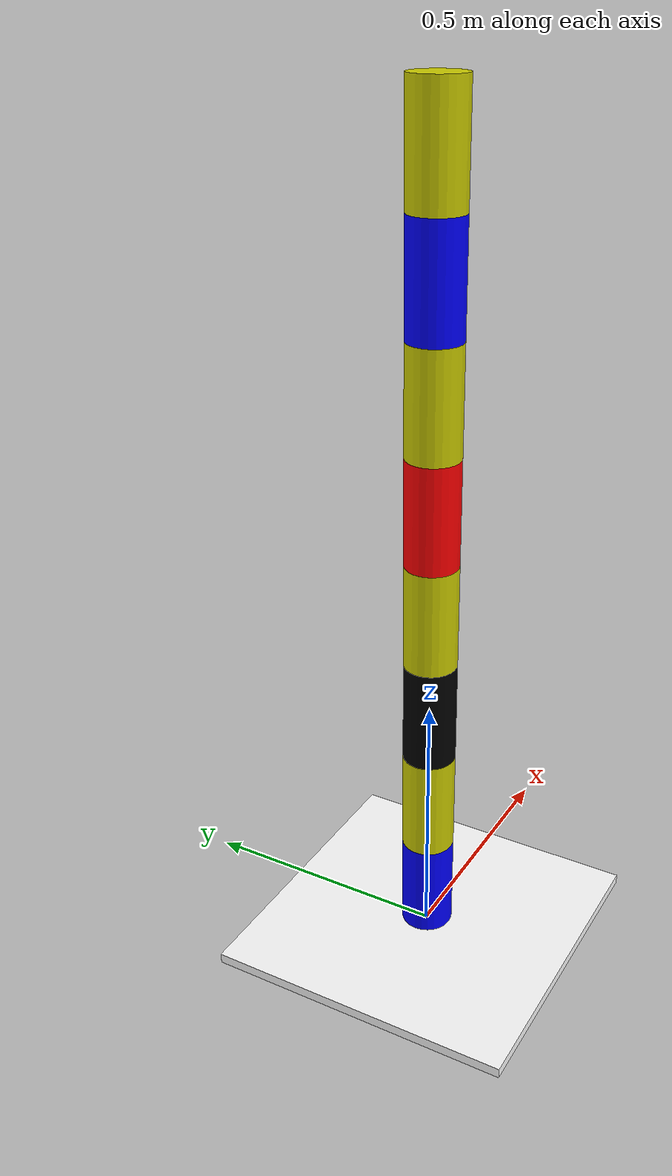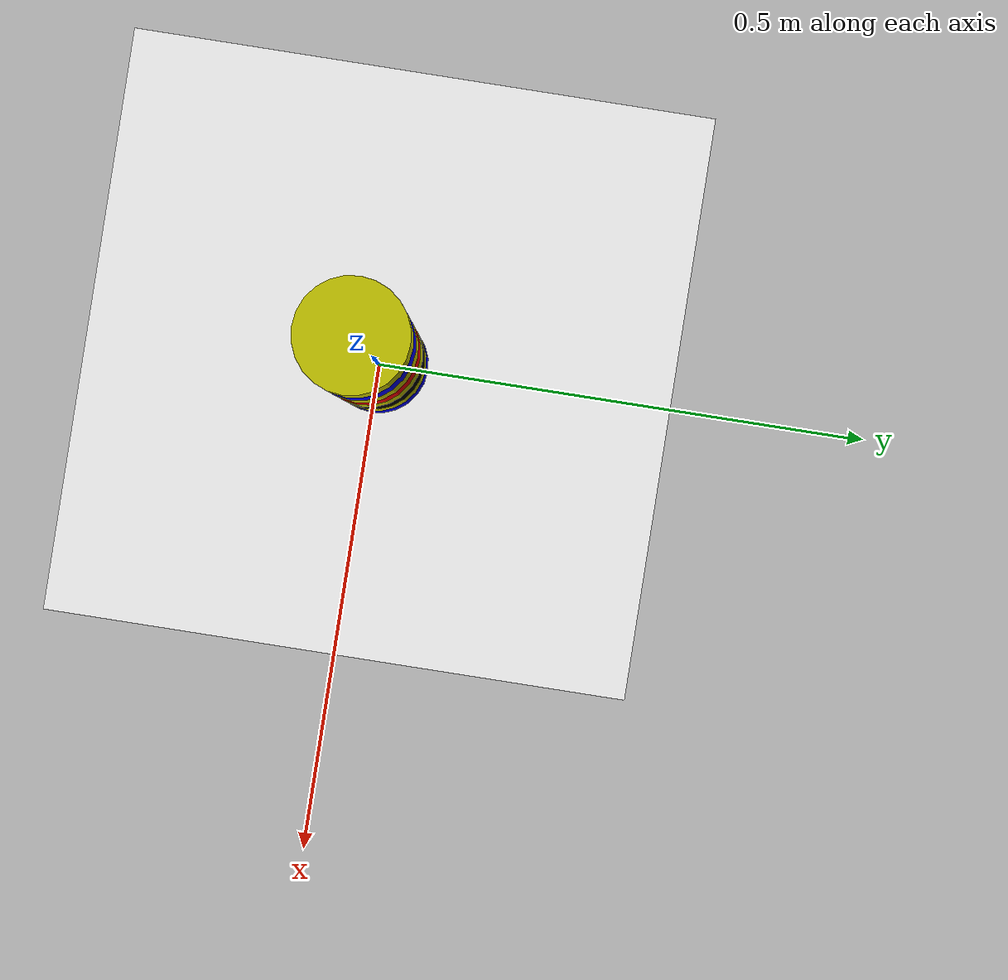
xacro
<?xml version="1.0"?>

<robot name="robot_kuka" xmlns:xacro="http://wiki.ros.org/xacro">
    <xacro:include filename="$(find es_six)/urdf/robot_kuka_macro.xacro" />

<xacro:base_link_macro
	base_link_name="base_link">
</xacro:base_link_macro>

<xacro:kuka_joint
            name="joint0"
            type="fixed"
            parent="base_link"
            child="link1">
            <origin xyz="0 0 0" />
            <axis xyz="0 0 1"/>
	   <limit effort="0" velocity="0" lower="0" upper="0"/>

</xacro:kuka_joint>

<xacro:kuka_link
            name="link1">
            <geometry>
                <cylinder length="0.2" radius="0.05"/>
            </geometry>
            <origin xyz="0 0 0.1" rpy="0 0 0"/>
	    <material name="blue">
              <color rgba="0 0 1 1"/>
            </material>
</xacro:kuka_link>

<xacro:kuka_joint
            name="joint1"
            type="revolute"
            parent="link1"
            child="link2">
            <origin xyz="0 0 0.2" />
            <axis xyz="0 0 1"/>
	   <limit effort="176" velocity="0.1" lower="-2.96" upper="2.96"/>

</xacro:kuka_joint>

<xacro:kuka_link
            name="link2">
            <geometry>
                <cylinder length="0.2" radius="0.05"/>
            </geometry>

            <origin xyz="0 0 0.1" rpy="0 0 0"/>
	    <material name="yellow">
              <color rgba="0.8 0.8 0 1"/>
            </material>
</xacro:kuka_link>

<xacro:kuka_joint
            name="joint2"
            type="revolute"
            parent="link2"
            child="link3">
            <origin xyz="0 0 0.2" />
            <axis xyz="0 1 0"/>
 <limit effort="176" velocity="0.1" lower="-2.06" upper="2.06"/>
</xacro:kuka_joint>

<xacro:kuka_link
            name="link3">
            <geometry>
                <cylinder length="0.2" radius="0.05"/>
            </geometry>

            <origin xyz="0 0 0.1" rpy="0 0 0"/>
	    <material name="red">
              <color rgba="0 0 0 1"/>
            </material>
</xacro:kuka_link>

<xacro:kuka_joint
            name="joint3"
            type="revolute"
            parent="link3"
            child="link4">
            <origin xyz="0 0 0.2" />
            <axis xyz="0 0 1"/>
 <limit effort="110" velocity="0.1" lower="-2.96" upper="2.96"/>
</xacro:kuka_joint>

<xacro:kuka_link
            name="link4">
            <geometry>
                <cylinder length="0.2" radius="0.05"/>
            </geometry>

            <origin xyz="0 0 0.1" rpy="0 0 0"/>
	    <material name="yellow">
              <color rgba="0.8 0.8 0 1"/>
            </material>
</xacro:kuka_link>

<xacro:kuka_joint
            name="joint4"
            type="revolute"
            parent="link4"
            child="link5">
            <origin xyz="0 0 0.2" />
            <axis xyz="0 -1 0"/>
 <limit effort="110" velocity="0.1" lower="-2.09" upper="2.09"/>
</xacro:kuka_joint>

<xacro:kuka_link
            name="link5">
            <geometry>
                <cylinder length="0.2" radius="0.05"/>
            </geometry>

            <origin xyz="0 0 0.1" rpy="0 0 0"/>
	    <material name="green">
              <color rgba="1 0 0 1"/>
            </material>
</xacro:kuka_link>

<xacro:kuka_joint
            name="joint5"
            type="revolute"
            parent="link5"
            child="link6">
            <origin xyz="0 0 0.2" />
            <axis xyz="0 0 1"/>
 <limit effort="110" velocity="0.1" lower="-2.96" upper="2.96"/>
</xacro:kuka_joint>

<xacro:kuka_link
            name="link6">
            <geometry>
                <cylinder length="0.2" radius="0.05"/>
            </geometry>

            <origin xyz="0 0 0.1" rpy="0 0 0"/>
	    <material name="yellow">
              <color rgba="0.8 0.8 0 1"/>
            </material>
</xacro:kuka_link>

<xacro:kuka_joint
            name="joint6"
            type="revolute"
            parent="link6"
            child="link7">
            <origin xyz="0 0 0.2" />
            <axis xyz="0 1 0"/>
 <limit effort="40" velocity="0.1" lower="-2.09" upper="2.09"/>
</xacro:kuka_joint>

<xacro:kuka_link
            name="link7">
            <geometry>
                <cylinder length="0.2" radius="0.05"/>
            </geometry>

            <origin xyz="0 0 0.1" rpy="0 0 0"/>
	    <material name="blue">
              <color rgba="0 0 1 1"/>
            </material>
</xacro:kuka_link>

<xacro:kuka_joint
            name="joint7"
            type="revolute"
            parent="link7"
            child="end_effector">
            <origin xyz="0 0 0.2" />
            <axis xyz="0 0 1"/>
 <limit effort="40" velocity="0.1" lower="-3.05" upper="3.05"/>
</xacro:kuka_joint>

<xacro:kuka_link
            name="end_effector">
            <geometry>
                <cylinder length="0.2" radius="0.05"/>
            </geometry>

            <origin xyz="0 0 0.1" rpy="0 0 0"/>
	    <material name="yellow">
              <color rgba="0.8 0.8 0 1"/>
            </material>
</xacro:kuka_link>

</robot>

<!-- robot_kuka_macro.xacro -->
<robot name="robot_kuka_macro" xmlns:xacro="http://wiki.ros.org/xacro">

	<xacro:macro name="base_link_macro" params="base_link_name">
		<link name="${base_link_name}">
			<visual>
				<geometry>
					<box size="0.6 0.6 0.02"/>
				</geometry>
				<origin rpy="0 0 0" xyz="0 0 0"/>
					<material name="white">
						<color rgba="1 1 1 1"/>
					</material>
			</visual>
		</link>
	</xacro:macro>

    <xacro:macro name="kuka_link" params="name *geometry *origin *material">
        <link name="${name}">
            <visual>
                <xacro:insert_block name="geometry" />
                <xacro:insert_block name="origin" />
		<xacro:insert_block name="material" />

          </visual>

          <collision>
                <xacro:insert_block name="geometry" />
                <xacro:insert_block name="origin" />
            </collision>

      </link>
    </xacro:macro>

    <xacro:macro name="kuka_joint" params="name type parent child *origin *axis *limit">
        <joint name="${name}" type="${type}">
            <parent link="${parent}" />
            <child link="${child}" />
                   <xacro:insert_block name="origin" />
                <xacro:insert_block name="axis" />
		<xacro:insert_block name="limit" />

        <dynamics damping="50" friction="1"/>
        </joint>
    </xacro:macro>

</robot>
